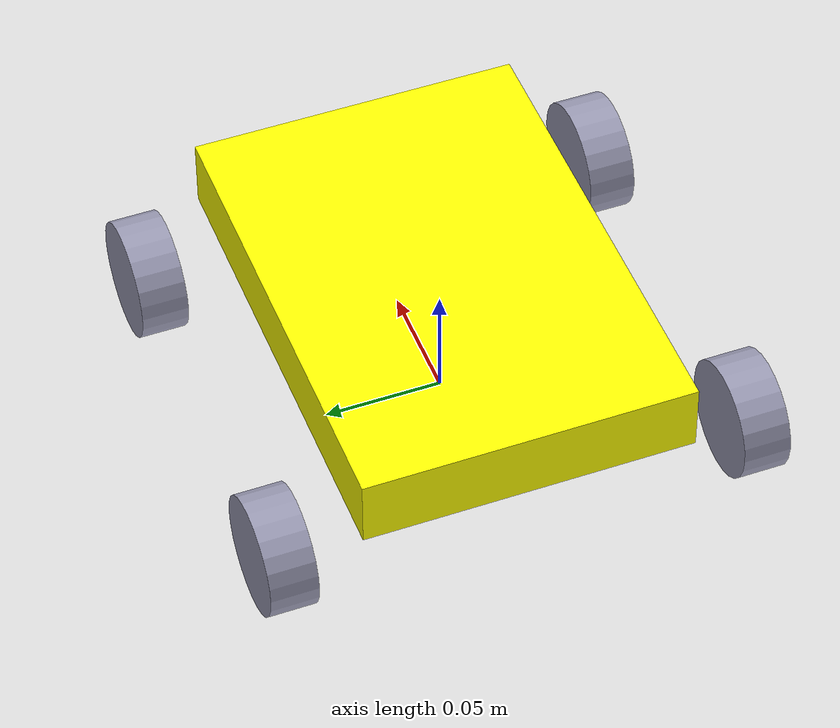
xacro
<?xml version="1.0"?>
<robot name="myrobot" xmlns:xacro="http://www.ros.org/wiki/xacro">
    <!-- Constants -->
    <xacro:property name="M_PI" value="3.1415926535897931" />
    <xacro:property name="M_PI_2" value="1.570796327" />

    <!-- Macro for inertia matrix -->
    <!-- m:mass r:radius l:length -->
    <xacro:macro name="cylinder_inertial_matrix" params="m r l">
        <inertial>
            <mass value="${m}" />
            <inertia ixx="${m*(3*r*r+l*l)/12}" ixy = "0" ixz = "0"
                iyy="${m*(3*r*r+l*l)/12}" iyz = "0"
                izz="${m*r*r/2}" />
        </inertial>
    </xacro:macro>
    <!-- m:mass l:length  w:width h:height-->
    <xacro:macro name="box_inertial_matrix" params="m l w h">
        <inertial>
            <mass value="${m}" />
            <inertia ixx="${m*(h*h+l*l)/12}" ixy = "0" ixz = "0"
                iyy="${m*(w*w+l*l)/12}" iyz = "0"
                izz="${m*(w*w+h*h)/12}" />
        </inertial>
    </xacro:macro>
    <link name="base_footprint">
    </link>
    <joint name="base_joint" type="fixed">
       <origin rpy="0 0 0"  xyz="0.0 0 0.055" />
       <parent link="base_footprint" />
       <child link="base_link" />
    </joint>

    <link name="base_link">
      <visual>
        <geometry>
          <box size="0.20 0.14 0.03"/>
        </geometry>
        <origin rpy="0 0 0" xyz="0 0 0"/>
        <material name="">
           <color rgba="1.0 1.0 0 1.0"/>
        </material>
      </visual>
      <box_inertial_matrix m="2.0" l="0.20" w="0.12" h="0.03"/>
    </link>
    <link name="right_front_steer_link">
    </link>
    <joint name="right_front_steer_joint" type="revolute">
       <origin rpy="0 0 0"  xyz="0.08 -0.1 0.01" />
       <parent link="base_link" />
       <child link="right_front_steer_link" />
       <axis xyz="0 0 1" />  <!-- charge steer direction default is 0 0 1-->
       <limit lower="-0.69" upper="0.69" effort="0" velocity="0" />
    </joint>

    <link name="right_front_wheel">
      <visual>
        <origin xyz="0 0 0" rpy="${M_PI_2} 0 0"/>
        <geometry>
          <cylinder length="0.02" radius="0.025"/>
        </geometry>
        <material name="">
          <color rgba="0.6 0.6 0.7 1.0"/>
        </material>
      </visual>
    </link>

    <joint name="right_front_wheel_joint" type="continuous">
        <axis xyz="0 1 0"/>
        <parent link="right_front_steer_link"/>
        <child link="right_front_wheel"/>
        <origin rpy="0 0 0" xyz="0 0 -0.04"/>
        <limit effort="100" velocity="100"/>
        <joint_properties damping="0.0" friction="0.0"/>
    </joint>

    <link name="right_back_wheel">
        <visual>
            <origin xyz="0 0 0" rpy="${M_PI_2} 0 0"/>
            <geometry>
                <cylinder length="0.02" radius="0.025"/>
            </geometry>
            <material name="">
                <color rgba="0.6 0.6 0.7 1.0"/>
            </material>
        </visual>
   </link>

    <joint name="right_back_wheel_joint" type="continuous">
        <axis xyz="0 1 0"/>
        <parent link="base_link"/>
        <child link="right_back_wheel"/>
        <origin rpy="0 0 0" xyz="-0.08 -0.1 -0.03"/>
        <limit effort="100" velocity="100"/>
        <joint_properties damping="0.0" friction="0.0"/>
    </joint>

    <link name="left_front_steer_link">
    </link>
    <joint name="left_front_steer_joint" type="revolute">
       <origin rpy="0 0 0"  xyz="0.08 0.1 0.01" />
       <parent link="base_link" />
       <child link="left_front_steer_link" />
       <axis xyz="0 0 1" />  <!-- charge steer direction default is 0 0 1-->
       <limit lower="-0.69" upper="0.69" effort="0" velocity="0" />
    </joint>

    <link name="left_front_wheel">
        <visual>
            <origin xyz="0 0 0" rpy="${M_PI_2} 0 0"/>
            <geometry>
                <cylinder length="0.02" radius="0.025"/>
            </geometry>
            <material name="">
                <color rgba="0.6 0.6 0.7 1.0"/>
            </material>
        </visual>
    </link>

    <joint name="left_front_wheel_joint" type="continuous">
      <axis xyz="0 1 0"/>
      <parent link="left_front_steer_link"/>
      <child link="left_front_wheel"/>
      <origin rpy="0 0 0" xyz="0 0 -0.04"/>
      <limit effort="100" velocity="100"/>
      <joint_properties damping="0.0" friction="0.0"/>
    </joint>

    <link name="left_back_wheel">
        <visual>
            <origin xyz="0 0 0" rpy="${M_PI_2} 0 0"/>
            <geometry>
                <cylinder length="0.02" radius="0.025"/>
            </geometry>
            <material name="">
                <color rgba="0.6 0.6 0.7 1.0"/>
            </material>
        </visual>
    </link>

    <joint name="left_back_wheel_joint" type="continuous">
      <axis xyz="0 1 0"/>
      <parent link="base_link"/>
      <child link="left_back_wheel"/>
      <origin rpy="0 0 0" xyz="-0.08 0.1 -0.03"/>
      <limit effort="100" velocity="100"/>
      <joint_properties damping="0.0" friction="0.0"/>
    </joint>

</robot>
